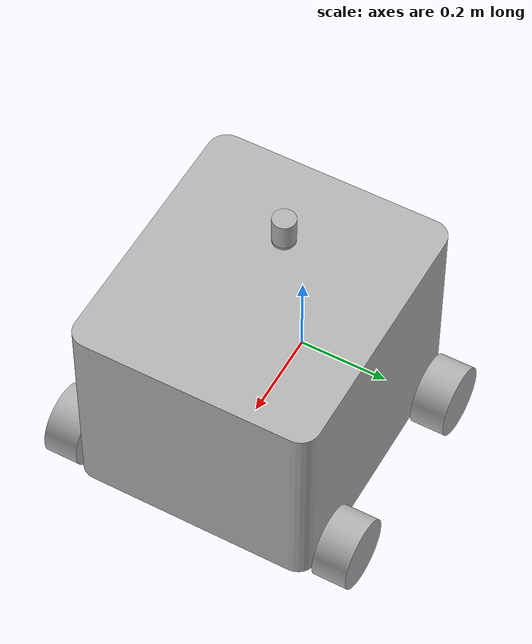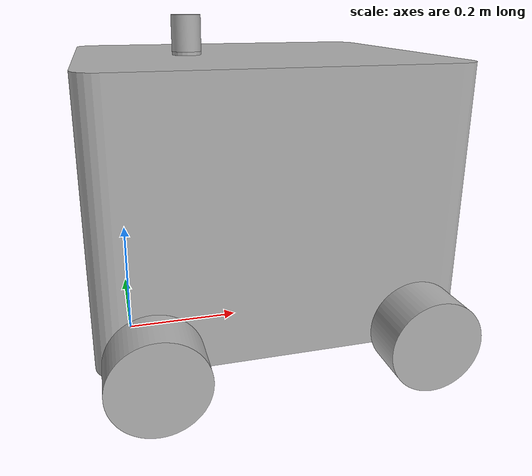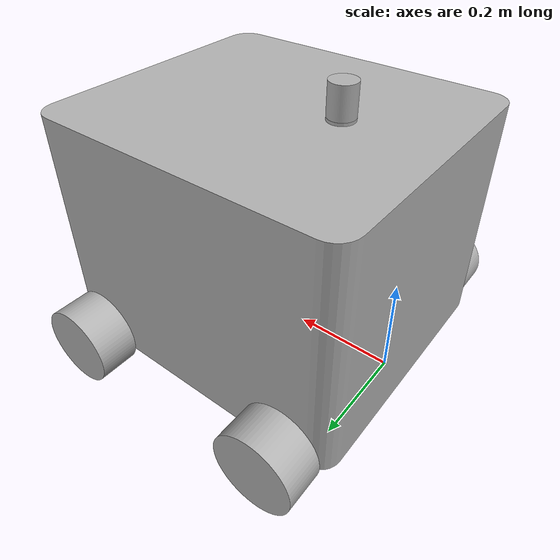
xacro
<?xml version="1.0" ?>
<robot name="mybody" xmlns:xacro="http://www.ros.org/wiki/xacro">

<xacro:include filename="$(find mybody_description)/urdf/materials.xacro" />
<xacro:include filename="$(find mybody_description)/urdf/mybody.trans" />
<xacro:include filename="$(find mybody_description)/urdf/mybody.gazebo" />
<link name="base_link">
  <inertial>
    <origin xyz="0.23813510154236295 0.036517220503994294 0.27278262884997306" rpy="0 0 0"/>
    <mass value="20.1239842476969"/>
    <inertia ixx="5.430118" iyy="2.483271" izz="9.925518" ixy="0.000215" iyz="0.002915" ixz="0.002073"/>
  </inertial>
  <visual>
    <origin xyz="0 0 0" rpy="0 0 0"/>
    <geometry>
      <mesh filename="package://mybody_description/meshes/base_link.stl" scale="0.001 0.001 0.001"/>
    </geometry>
    <material name="silver"/>
  </visual>
  <collision>
    <origin xyz="0 0 0" rpy="0 0 0"/>
    <geometry>
      <mesh filename="package://mybody_description/meshes/base_link.stl" scale="0.001 0.001 0.001"/>
    </geometry>
  </collision>
</link>

<link name="Component5_1">
  <inertial>
    <origin xyz="6.0061849938009e-10 0.03749954698860558 -1.590061568523815e-09" rpy="0 0 0"/>
    <mass value="1.272342480013816"/>
    <inertia ixx="0.002443" iyy="0.003694" izz="0.002443" ixy="0.0" iyz="-0.0" ixz="-0.0"/>
  </inertial>
  <visual>
    <origin xyz="-0.45 -0.308007 -0.075" rpy="0 0 0"/>
    <geometry>
      <mesh filename="package://mybody_description/meshes/Component5_1.stl" scale="0.001 0.001 0.001"/>
    </geometry>
    <material name="silver"/>
  </visual>
  <collision>
    <origin xyz="-0.45 -0.308007 -0.075" rpy="0 0 0"/>
    <geometry>
      <mesh filename="package://mybody_description/meshes/Component5_1.stl" scale="0.001 0.001 0.001"/>
    </geometry>
  </collision>
</link>

<link name="Component4_1">
  <inertial>
    <origin xyz="6.006192522500786e-10 0.03749954698860569 -1.5900615130126639e-09" rpy="0 0 0"/>
    <mass value="1.272342480013817"/>
    <inertia ixx="0.002443" iyy="0.003694" izz="0.002443" ixy="-0.0" iyz="0.0" ixz="-0.0"/>
  </inertial>
  <visual>
    <origin xyz="-0.025 -0.308007 -0.075" rpy="0 0 0"/>
    <geometry>
      <mesh filename="package://mybody_description/meshes/Component4_1.stl" scale="0.001 0.001 0.001"/>
    </geometry>
    <material name="silver"/>
  </visual>
  <collision>
    <origin xyz="-0.025 -0.308007 -0.075" rpy="0 0 0"/>
    <geometry>
      <mesh filename="package://mybody_description/meshes/Component4_1.stl" scale="0.001 0.001 0.001"/>
    </geometry>
  </collision>
</link>

<link name="Component2_1">
  <inertial>
    <origin xyz="6.006201577757331e-10 -0.037500453011396206 -1.5900617489350566e-09" rpy="0 0 0"/>
    <mass value="1.272342480013817"/>
    <inertia ixx="0.002443" iyy="0.003694" izz="0.002443" ixy="0.0" iyz="0.0" ixz="-0.0"/>
  </inertial>
  <visual>
    <origin xyz="-0.025 0.234993 -0.075" rpy="0 0 0"/>
    <geometry>
      <mesh filename="package://mybody_description/meshes/Component2_1.stl" scale="0.001 0.001 0.001"/>
    </geometry>
    <material name="silver"/>
  </visual>
  <collision>
    <origin xyz="-0.025 0.234993 -0.075" rpy="0 0 0"/>
    <geometry>
      <mesh filename="package://mybody_description/meshes/Component2_1.stl" scale="0.001 0.001 0.001"/>
    </geometry>
  </collision>
</link>

<link name="Component3_1">
  <inertial>
    <origin xyz="-2.202856119737362e-07 -0.03750045301139654 -1.5900610272900906e-09" rpy="0 0 0"/>
    <mass value="1.272342480013816"/>
    <inertia ixx="0.002443" iyy="0.003694" izz="0.002443" ixy="-0.0" iyz="-0.0" ixz="-0.0"/>
  </inertial>
  <visual>
    <origin xyz="-0.451291 0.234993 -0.075" rpy="0 0 0"/>
    <geometry>
      <mesh filename="package://mybody_description/meshes/Component3_1.stl" scale="0.001 0.001 0.001"/>
    </geometry>
    <material name="silver"/>
  </visual>
  <collision>
    <origin xyz="-0.451291 0.234993 -0.075" rpy="0 0 0"/>
    <geometry>
      <mesh filename="package://mybody_description/meshes/Component3_1.stl" scale="0.001 0.001 0.001"/>
    </geometry>
  </collision>
</link>

<link name="lidar_1">
  <inertial>
    <origin xyz="-9.225360037001806e-08 3.114278584806507e-07 0.02999977515746799" rpy="0 0 0"/>
    <mass value="0.924806337400498"/>
    <inertia ixx="0.000422" iyy="0.000422" izz="0.000289" ixy="-0.0" iyz="-0.0" ixz="-0.0"/>
  </inertial>
  <visual>
    <origin xyz="-0.125692 -0.022577 -0.503709" rpy="0 0 0"/>
    <geometry>
      <mesh filename="package://mybody_description/meshes/lidar_1.stl" scale="0.001 0.001 0.001"/>
    </geometry>
    <material name="silver"/>
  </visual>
  <collision>
    <origin xyz="-0.125692 -0.022577 -0.503709" rpy="0 0 0"/>
    <geometry>
      <mesh filename="package://mybody_description/meshes/lidar_1.stl" scale="0.001 0.001 0.001"/>
    </geometry>
  </collision>
</link>

<joint name="Revolute 17" type="continuous">
  <origin xyz="0.45 0.308007 0.075" rpy="0 0 0"/>
  <parent link="base_link"/>
  <child link="Component5_1"/>
  <axis xyz="-0.0 -1.0 0.0"/>
</joint>

<joint name="Revolute 18" type="continuous">
  <origin xyz="0.025 0.308007 0.075" rpy="0 0 0"/>
  <parent link="base_link"/>
  <child link="Component4_1"/>
  <axis xyz="-0.0 -1.0 0.0"/>
</joint>

<joint name="Revolute 19" type="continuous">
  <origin xyz="0.025 -0.234993 0.075" rpy="0 0 0"/>
  <parent link="base_link"/>
  <child link="Component2_1"/>
  <axis xyz="0.0 -1.0 -0.0"/>
</joint>

<joint name="Revolute 20" type="continuous">
  <origin xyz="0.451291 -0.234993 0.075" rpy="0 0 0"/>
  <parent link="base_link"/>
  <child link="Component3_1"/>
  <axis xyz="0.0 -1.0 -0.0"/>
</joint>

<joint name="Rigid 22" type="fixed">
  <origin xyz="0.125692 0.022577 0.503709" rpy="0 0 0"/>
  <parent link="base_link"/>
  <child link="lidar_1"/>
</joint>

</robot>

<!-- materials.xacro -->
<robot name="mybody" xmlns:xacro="http://www.ros.org/wiki/xacro" >

<material name="silver">
  <color rgba="0.700 0.700 0.700 1.000"/>
</material>

</robot>

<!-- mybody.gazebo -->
<robot name="mybody" xmlns:xacro="http://www.ros.org/wiki/xacro" >

<xacro:property name="body_color" value="Gazebo/Silver" />

<gazebo>
  <plugin name="control" filename="libgazebo_ros_control.so"/>
</gazebo>
<gazebo reference="base_link">
  <material>${body_color}</material>
  <mu1>0.2</mu1>
  <mu2>0.2</mu2>
  <selfCollide>true</selfCollide>
  <gravity>true</gravity>
</gazebo>

<gazebo reference="Component5_1">
  <material>${body_color}</material>
  <mu1>0.2</mu1>
  <mu2>0.2</mu2>
  <selfCollide>true</selfCollide>
</gazebo>

<gazebo reference="Component4_1">
  <material>${body_color}</material>
  <mu1>0.2</mu1>
  <mu2>0.2</mu2>
  <selfCollide>true</selfCollide>
</gazebo>

<gazebo reference="Component2_1">
  <material>${body_color}</material>
  <mu1>0.2</mu1>
  <mu2>0.2</mu2>
  <selfCollide>true</selfCollide>
</gazebo>

<gazebo reference="Component3_1">
  <material>${body_color}</material>
  <mu1>0.2</mu1>
  <mu2>0.2</mu2>
  <selfCollide>true</selfCollide>
</gazebo>

<gazebo reference="lidar_1">
  <material>${body_color}</material>
  <mu1>0.2</mu1>
  <mu2>0.2</mu2>
  <selfCollide>true</selfCollide>
</gazebo>
<gazebo>
  <plugin name="skid_steer_drive_controller" filename="libgazebo_ros_skid_steer_drive.so">
    <updateRate>100.0</updateRate>
    <robotNamespace>/</robotNamespace>
    <leftFrontJoint>Revolute 19</leftFrontJoint>
    <rightFrontJoint>Revolute 18</rightFrontJoint>
    <leftRearJoint>Revolute 20</leftRearJoint>
    <rightRearJoint>Revolute 17</rightRearJoint>
    <wheelSeparation>0.448</wheelSeparation>
    <wheelDiameter>0.152</wheelDiameter>
    <robotBaseFrame>base_link</robotBaseFrame>
    <torque>50</torque>
    <topicName>cmd_vel</topicName>
    <broadcastTF>false</broadcastTF>
  </plugin>
</gazebo>

 <gazebo reference="lidar_1">
    <sensor type="ray" name="head_hokuyo_sensor">
      <pose>0 0 0 0 0 0</pose>
      <visualize>true</visualize>
      <update_rate>40</update_rate>
      <ray>
        <scan>
          <horizontal>
            <samples>720</samples>
            <resolution>1</resolution>
            <min_angle>0.000000</min_angle>
            <max_angle>6.280000</max_angle>
          </horizontal>
        </scan>
        <range>
          <min>0.10</min>
          <max>15.0</max>
          <resolution>0.01</resolution>
        </range>
        <noise>
          <type>gaussian</type>
          <mean>0.0</mean>
          <stddev>0.01</stddev>
        </noise>
      </ray>
      <plugin name="gazebo_ros_head_hokuyo_controller" filename="libgazebo_ros_laser.so">
        <topicName>/scan</topicName>
        <frameName>base_link</frameName>
      </plugin>
    </sensor>
</gazebo>

</robot>
